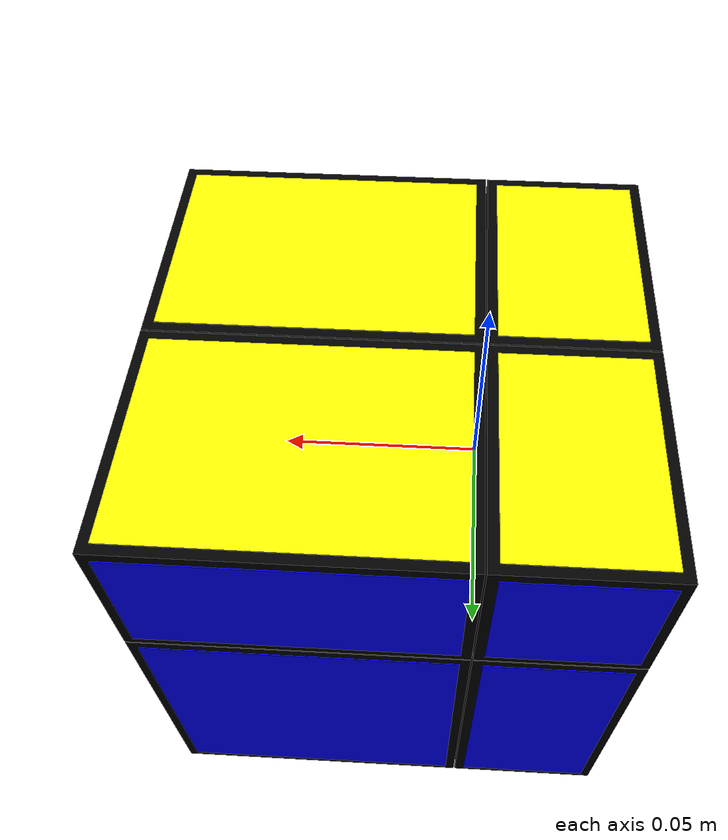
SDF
<?xml version="1.0" ?>
<sdf version="1.7">
	<model name="mirror_cube_2x2">
		<link name="center_mirror_big"/>
		<link name="cubie_0_0_0">
			<pose>-0.0202 -0.030199999999999998 -0.0402 0.0 0.0 0.0</pose>
			<inertial>
				<mass>0.07487999999999999</mass>
				<inertia>
					<ixx>6.239999999999999e-05</ixx>
					<ixy>0.0</ixy>
					<ixz>0.0</ixz>
					<iyy>4.9919999999999996e-05</iyy>
					<iyz>0.0</iyz>
					<izz>3.244799999999999e-05</izz>
				</inertia>
			</inertial>
			<collision name="collision">
				<geometry>
					<box>
						<size>0.04 0.06 0.08</size>
					</box>
				</geometry>
				<surface>
					<friction>
						<ode>
							<mu>0</mu>
							<mu2>0</mu2>
						</ode>
					</friction>
				</surface>
			</collision>
			<visual name="black">
				<geometry>
					<box>
						<size>0.04 0.06 0.08</size>
					</box>
				</geometry>
				<material>
					<diffuse>0 0 0 1</diffuse>
				</material>
			</visual>
			<visual name="red">
				<pose>-0.02 0.0 0.0 0.0 0.0 0.0</pose>
				<geometry>
					<box>
						<size>0.00035 0.055 0.075</size>
					</box>
				</geometry>
				<material>
					<diffuse>1 0 0 1</diffuse>
				</material>
			</visual>
			<visual name="green">
				<pose>0.0 -0.03 0.0 0.0 0.0 0.0</pose>
				<geometry>
					<box>
						<size>0.035 0.00055 0.075</size>
					</box>
				</geometry>
				<material>
					<diffuse>0 1 0 1</diffuse>
				</material>
			</visual>
			<visual name="white">
				<pose>0.0 0.0 -0.04 0.0 0.0 0.0</pose>
				<geometry>
					<box>
						<size>0.035 0.055 0.00075</size>
					</box>
				</geometry>
				<material>
					<diffuse>1 1 1 1</diffuse>
				</material>
			</visual>
		</link>
		<joint name="ball_0_0_0" type="ball">
			<pose>0.0202 0.030199999999999998 0.0402 -0.0 -0.0 -0.0</pose>
			<parent>center_mirror_big</parent>
			<child>cubie_0_0_0</child>
			<axis>
				<dynamics>
					<damping>0.1</damping>
				</dynamics>
				<limit>
					<effort>0</effort>
				</limit>
			</axis>
		</joint>
		<link name="cubie_0_0_1">
			<pose>-0.0202 -0.030199999999999998 0.020199999999999996 0.0 0.0 0.0</pose>
			<inertial>
				<mass>0.03743999999999999</mass>
				<inertia>
					<ixx>1.6223999999999996e-05</ixx>
					<ixy>0.0</ixy>
					<ixz>0.0</ixz>
					<iyy>9.983999999999996e-06</iyy>
					<iyz>0.0</iyz>
					<izz>1.6223999999999996e-05</izz>
				</inertia>
			</inertial>
			<collision name="collision">
				<geometry>
					<box>
						<size>0.04 0.06 0.039999999999999994</size>
					</box>
				</geometry>
				<surface>
					<friction>
						<ode>
							<mu>0</mu>
							<mu2>0</mu2>
						</ode>
					</friction>
				</surface>
			</collision>
			<visual name="black">
				<geometry>
					<box>
						<size>0.04 0.06 0.039999999999999994</size>
					</box>
				</geometry>
				<material>
					<diffuse>0 0 0 1</diffuse>
				</material>
			</visual>
			<visual name="red">
				<pose>-0.02 0.0 0.0 0.0 0.0 0.0</pose>
				<geometry>
					<box>
						<size>0.00035 0.055 0.035</size>
					</box>
				</geometry>
				<material>
					<diffuse>1 0 0 1</diffuse>
				</material>
			</visual>
			<visual name="green">
				<pose>0.0 -0.03 0.0 0.0 0.0 0.0</pose>
				<geometry>
					<box>
						<size>0.035 0.00055 0.035</size>
					</box>
				</geometry>
				<material>
					<diffuse>0 1 0 1</diffuse>
				</material>
			</visual>
			<visual name="yellow">
				<pose>0.0 0.0 0.019999999999999997 0.0 0.0 0.0</pose>
				<geometry>
					<box>
						<size>0.035 0.055 0.00035</size>
					</box>
				</geometry>
				<material>
					<diffuse>1 1 0 1</diffuse>
				</material>
			</visual>
		</link>
		<joint name="ball_0_0_1" type="ball">
			<pose>0.0202 0.030199999999999998 -0.020199999999999996 -0.0 -0.0 -0.0</pose>
			<parent>center_mirror_big</parent>
			<child>cubie_0_0_1</child>
			<axis>
				<dynamics>
					<damping>0.1</damping>
				</dynamics>
				<limit>
					<effort>0</effort>
				</limit>
			</axis>
		</joint>
		<link name="cubie_0_1_0">
			<pose>-0.0202 0.030199999999999998 -0.0402 0.0 0.0 0.0</pose>
			<inertial>
				<mass>0.07487999999999999</mass>
				<inertia>
					<ixx>6.239999999999999e-05</ixx>
					<ixy>0.0</ixy>
					<ixz>0.0</ixz>
					<iyy>4.9919999999999996e-05</iyy>
					<iyz>0.0</iyz>
					<izz>3.244799999999999e-05</izz>
				</inertia>
			</inertial>
			<collision name="collision">
				<geometry>
					<box>
						<size>0.04 0.06 0.08</size>
					</box>
				</geometry>
				<surface>
					<friction>
						<ode>
							<mu>0</mu>
							<mu2>0</mu2>
						</ode>
					</friction>
				</surface>
			</collision>
			<visual name="black">
				<geometry>
					<box>
						<size>0.04 0.06 0.08</size>
					</box>
				</geometry>
				<material>
					<diffuse>0 0 0 1</diffuse>
				</material>
			</visual>
			<visual name="red">
				<pose>-0.02 0.0 0.0 0.0 0.0 0.0</pose>
				<geometry>
					<box>
						<size>0.00035 0.055 0.075</size>
					</box>
				</geometry>
				<material>
					<diffuse>1 0 0 1</diffuse>
				</material>
			</visual>
			<visual name="blue">
				<pose>0.0 0.03 0.0 0.0 0.0 0.0</pose>
				<geometry>
					<box>
						<size>0.035 0.00055 0.075</size>
					</box>
				</geometry>
				<material>
					<diffuse>0 0 1 1</diffuse>
				</material>
			</visual>
			<visual name="white">
				<pose>0.0 0.0 -0.04 0.0 0.0 0.0</pose>
				<geometry>
					<box>
						<size>0.035 0.055 0.00075</size>
					</box>
				</geometry>
				<material>
					<diffuse>1 1 1 1</diffuse>
				</material>
			</visual>
		</link>
		<joint name="ball_0_1_0" type="ball">
			<pose>0.0202 -0.030199999999999998 0.0402 -0.0 -0.0 -0.0</pose>
			<parent>center_mirror_big</parent>
			<child>cubie_0_1_0</child>
			<axis>
				<dynamics>
					<damping>0.1</damping>
				</dynamics>
				<limit>
					<effort>0</effort>
				</limit>
			</axis>
		</joint>
		<link name="cubie_0_1_1">
			<pose>-0.0202 0.030199999999999998 0.020199999999999996 0.0 0.0 0.0</pose>
			<inertial>
				<mass>0.03743999999999999</mass>
				<inertia>
					<ixx>1.6223999999999996e-05</ixx>
					<ixy>0.0</ixy>
					<ixz>0.0</ixz>
					<iyy>9.983999999999996e-06</iyy>
					<iyz>0.0</iyz>
					<izz>1.6223999999999996e-05</izz>
				</inertia>
			</inertial>
			<collision name="collision">
				<geometry>
					<box>
						<size>0.04 0.06 0.039999999999999994</size>
					</box>
				</geometry>
				<surface>
					<friction>
						<ode>
							<mu>0</mu>
							<mu2>0</mu2>
						</ode>
					</friction>
				</surface>
			</collision>
			<visual name="black">
				<geometry>
					<box>
						<size>0.04 0.06 0.039999999999999994</size>
					</box>
				</geometry>
				<material>
					<diffuse>0 0 0 1</diffuse>
				</material>
			</visual>
			<visual name="red">
				<pose>-0.02 0.0 0.0 0.0 0.0 0.0</pose>
				<geometry>
					<box>
						<size>0.00035 0.055 0.035</size>
					</box>
				</geometry>
				<material>
					<diffuse>1 0 0 1</diffuse>
				</material>
			</visual>
			<visual name="blue">
				<pose>0.0 0.03 0.0 0.0 0.0 0.0</pose>
				<geometry>
					<box>
						<size>0.035 0.00055 0.035</size>
					</box>
				</geometry>
				<material>
					<diffuse>0 0 1 1</diffuse>
				</material>
			</visual>
			<visual name="yellow">
				<pose>0.0 0.0 0.019999999999999997 0.0 0.0 0.0</pose>
				<geometry>
					<box>
						<size>0.035 0.055 0.00035</size>
					</box>
				</geometry>
				<material>
					<diffuse>1 1 0 1</diffuse>
				</material>
			</visual>
		</link>
		<joint name="ball_0_1_1" type="ball">
			<pose>0.0202 -0.030199999999999998 -0.020199999999999996 -0.0 -0.0 -0.0</pose>
			<parent>center_mirror_big</parent>
			<child>cubie_0_1_1</child>
			<axis>
				<dynamics>
					<damping>0.1</damping>
				</dynamics>
				<limit>
					<effort>0</effort>
				</limit>
			</axis>
		</joint>
		<link name="cubie_1_0_0">
			<pose>0.04019999999999999 -0.030199999999999998 -0.0402 0.0 0.0 0.0</pose>
			<inertial>
				<mass>0.14975999999999995</mass>
				<inertia>
					<ixx>0.00012479999999999997</ixx>
					<ixy>0.0</ixy>
					<ixz>0.0</ixz>
					<iyy>0.00015974399999999994</iyy>
					<iyz>0.0</iyz>
					<izz>0.00012479999999999994</izz>
				</inertia>
			</inertial>
			<collision name="collision">
				<geometry>
					<box>
						<size>0.07999999999999999 0.06 0.08</size>
					</box>
				</geometry>
				<surface>
					<friction>
						<ode>
							<mu>0</mu>
							<mu2>0</mu2>
						</ode>
					</friction>
				</surface>
			</collision>
			<visual name="black">
				<geometry>
					<box>
						<size>0.07999999999999999 0.06 0.08</size>
					</box>
				</geometry>
				<material>
					<diffuse>0 0 0 1</diffuse>
				</material>
			</visual>
			<visual name="orange">
				<pose>0.039999999999999994 0.0 0.0 0.0 0.0 0.0</pose>
				<geometry>
					<box>
						<size>0.00075 0.055 0.075</size>
					</box>
				</geometry>
				<material>
					<diffuse>1.0 0.5 0.0 1.0</diffuse>
				</material>
			</visual>
			<visual name="green">
				<pose>0.0 -0.03 0.0 0.0 0.0 0.0</pose>
				<geometry>
					<box>
						<size>0.075 0.00055 0.075</size>
					</box>
				</geometry>
				<material>
					<diffuse>0 1 0 1</diffuse>
				</material>
			</visual>
			<visual name="white">
				<pose>0.0 0.0 -0.04 0.0 0.0 0.0</pose>
				<geometry>
					<box>
						<size>0.075 0.055 0.00075</size>
					</box>
				</geometry>
				<material>
					<diffuse>1 1 1 1</diffuse>
				</material>
			</visual>
		</link>
		<joint name="ball_1_0_0" type="ball">
			<pose>-0.04019999999999999 0.030199999999999998 0.0402 -0.0 -0.0 -0.0</pose>
			<parent>center_mirror_big</parent>
			<child>cubie_1_0_0</child>
			<axis>
				<dynamics>
					<damping>0.1</damping>
				</dynamics>
				<limit>
					<effort>0</effort>
				</limit>
			</axis>
		</joint>
		<link name="cubie_1_0_1">
			<pose>0.04019999999999999 -0.030199999999999998 0.020199999999999996 0.0 0.0 0.0</pose>
			<inertial>
				<mass>0.07487999999999997</mass>
				<inertia>
					<ixx>3.244799999999999e-05</ixx>
					<ixy>0.0</ixy>
					<ixz>0.0</ixz>
					<iyy>4.991999999999996e-05</iyy>
					<iyz>0.0</iyz>
					<izz>6.239999999999997e-05</izz>
				</inertia>
			</inertial>
			<collision name="collision">
				<geometry>
					<box>
						<size>0.07999999999999999 0.06 0.039999999999999994</size>
					</box>
				</geometry>
				<surface>
					<friction>
						<ode>
							<mu>0</mu>
							<mu2>0</mu2>
						</ode>
					</friction>
				</surface>
			</collision>
			<visual name="black">
				<geometry>
					<box>
						<size>0.07999999999999999 0.06 0.039999999999999994</size>
					</box>
				</geometry>
				<material>
					<diffuse>0 0 0 1</diffuse>
				</material>
			</visual>
			<visual name="orange">
				<pose>0.039999999999999994 0.0 0.0 0.0 0.0 0.0</pose>
				<geometry>
					<box>
						<size>0.00075 0.055 0.035</size>
					</box>
				</geometry>
				<material>
					<diffuse>1.0 0.5 0.0 1.0</diffuse>
				</material>
			</visual>
			<visual name="green">
				<pose>0.0 -0.03 0.0 0.0 0.0 0.0</pose>
				<geometry>
					<box>
						<size>0.075 0.00055 0.035</size>
					</box>
				</geometry>
				<material>
					<diffuse>0 1 0 1</diffuse>
				</material>
			</visual>
			<visual name="yellow">
				<pose>0.0 0.0 0.019999999999999997 0.0 0.0 0.0</pose>
				<geometry>
					<box>
						<size>0.075 0.055 0.00035</size>
					</box>
				</geometry>
				<material>
					<diffuse>1 1 0 1</diffuse>
				</material>
			</visual>
		</link>
		<joint name="ball_1_0_1" type="ball">
			<pose>-0.04019999999999999 0.030199999999999998 -0.020199999999999996 -0.0 -0.0 -0.0</pose>
			<parent>center_mirror_big</parent>
			<child>cubie_1_0_1</child>
			<axis>
				<dynamics>
					<damping>0.1</damping>
				</dynamics>
				<limit>
					<effort>0</effort>
				</limit>
			</axis>
		</joint>
		<link name="cubie_1_1_0">
			<pose>0.04019999999999999 0.030199999999999998 -0.0402 0.0 0.0 0.0</pose>
			<inertial>
				<mass>0.14975999999999995</mass>
				<inertia>
					<ixx>0.00012479999999999997</ixx>
					<ixy>0.0</ixy>
					<ixz>0.0</ixz>
					<iyy>0.00015974399999999994</iyy>
					<iyz>0.0</iyz>
					<izz>0.00012479999999999994</izz>
				</inertia>
			</inertial>
			<collision name="collision">
				<geometry>
					<box>
						<size>0.07999999999999999 0.06 0.08</size>
					</box>
				</geometry>
				<surface>
					<friction>
						<ode>
							<mu>0</mu>
							<mu2>0</mu2>
						</ode>
					</friction>
				</surface>
			</collision>
			<visual name="black">
				<geometry>
					<box>
						<size>0.07999999999999999 0.06 0.08</size>
					</box>
				</geometry>
				<material>
					<diffuse>0 0 0 1</diffuse>
				</material>
			</visual>
			<visual name="orange">
				<pose>0.039999999999999994 0.0 0.0 0.0 0.0 0.0</pose>
				<geometry>
					<box>
						<size>0.00075 0.055 0.075</size>
					</box>
				</geometry>
				<material>
					<diffuse>1.0 0.5 0.0 1.0</diffuse>
				</material>
			</visual>
			<visual name="blue">
				<pose>0.0 0.03 0.0 0.0 0.0 0.0</pose>
				<geometry>
					<box>
						<size>0.075 0.00055 0.075</size>
					</box>
				</geometry>
				<material>
					<diffuse>0 0 1 1</diffuse>
				</material>
			</visual>
			<visual name="white">
				<pose>0.0 0.0 -0.04 0.0 0.0 0.0</pose>
				<geometry>
					<box>
						<size>0.075 0.055 0.00075</size>
					</box>
				</geometry>
				<material>
					<diffuse>1 1 1 1</diffuse>
				</material>
			</visual>
		</link>
		<joint name="ball_1_1_0" type="ball">
			<pose>-0.04019999999999999 -0.030199999999999998 0.0402 -0.0 -0.0 -0.0</pose>
			<parent>center_mirror_big</parent>
			<child>cubie_1_1_0</child>
			<axis>
				<dynamics>
					<damping>0.1</damping>
				</dynamics>
				<limit>
					<effort>0</effort>
				</limit>
			</axis>
		</joint>
		<link name="cubie_1_1_1">
			<pose>0.04019999999999999 0.030199999999999998 0.020199999999999996 0.0 0.0 0.0</pose>
			<inertial>
				<mass>0.07487999999999997</mass>
				<inertia>
					<ixx>3.244799999999999e-05</ixx>
					<ixy>0.0</ixy>
					<ixz>0.0</ixz>
					<iyy>4.991999999999996e-05</iyy>
					<iyz>0.0</iyz>
					<izz>6.239999999999997e-05</izz>
				</inertia>
			</inertial>
			<collision name="collision">
				<geometry>
					<box>
						<size>0.07999999999999999 0.06 0.039999999999999994</size>
					</box>
				</geometry>
				<surface>
					<friction>
						<ode>
							<mu>0</mu>
							<mu2>0</mu2>
						</ode>
					</friction>
				</surface>
			</collision>
			<visual name="black">
				<geometry>
					<box>
						<size>0.07999999999999999 0.06 0.039999999999999994</size>
					</box>
				</geometry>
				<material>
					<diffuse>0 0 0 1</diffuse>
				</material>
			</visual>
			<visual name="orange">
				<pose>0.039999999999999994 0.0 0.0 0.0 0.0 0.0</pose>
				<geometry>
					<box>
						<size>0.00075 0.055 0.035</size>
					</box>
				</geometry>
				<material>
					<diffuse>1.0 0.5 0.0 1.0</diffuse>
				</material>
			</visual>
			<visual name="blue">
				<pose>0.0 0.03 0.0 0.0 0.0 0.0</pose>
				<geometry>
					<box>
						<size>0.075 0.00055 0.035</size>
					</box>
				</geometry>
				<material>
					<diffuse>0 0 1 1</diffuse>
				</material>
			</visual>
			<visual name="yellow">
				<pose>0.0 0.0 0.019999999999999997 0.0 0.0 0.0</pose>
				<geometry>
					<box>
						<size>0.075 0.055 0.00035</size>
					</box>
				</geometry>
				<material>
					<diffuse>1 1 0 1</diffuse>
				</material>
			</visual>
		</link>
		<joint name="ball_1_1_1" type="ball">
			<pose>-0.04019999999999999 -0.030199999999999998 -0.020199999999999996 -0.0 -0.0 -0.0</pose>
			<parent>center_mirror_big</parent>
			<child>cubie_1_1_1</child>
			<axis>
				<dynamics>
					<damping>0.1</damping>
				</dynamics>
				<limit>
					<effort>0</effort>
				</limit>
			</axis>
		</joint>
	</model>
</sdf>
